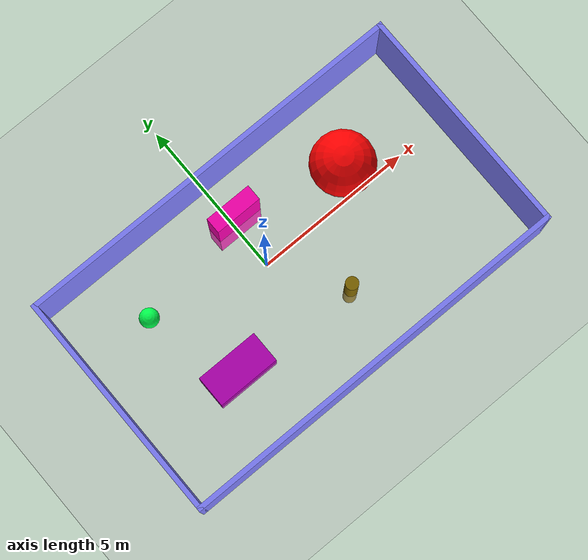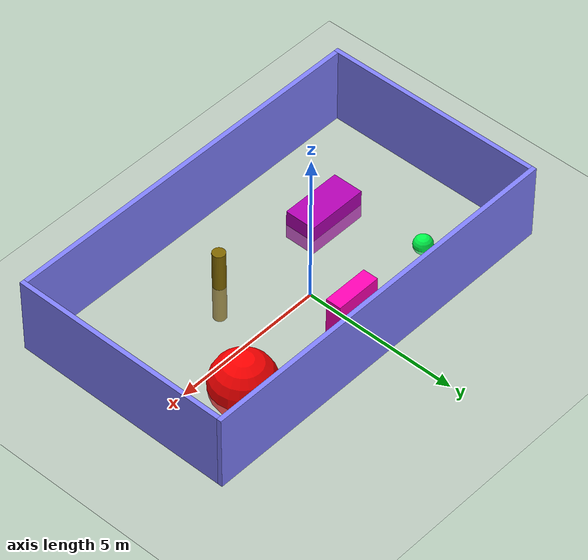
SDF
<sdf version="1.7">
 <world name="default">
  <light name="sun" type="directional">
   <pose>0 0 10 0 -0 0</pose>
   <diffuse>0.8 0.8 0.8 1</diffuse>
   <specular>0.2 0.2 0.2 1</specular>
   <attenuation>
    <range>1000</range>
    <constant>0.9</constant>
    <linear>0.01</linear>
    <quadratic>0.001</quadratic>
   </attenuation>
   <direction>-0.5 0.1 -0.9</direction>
   <spot><inner_angle>0</inner_angle><outer_angle>0</outer_angle><falloff>0</falloff></spot>
  </light>
  <model name="ground_plane">
   <static>1</static>
   <link name="link">
    <collision name="collision">
     <geometry><plane><normal>0 0 1</normal><size>100 100</size></plane></geometry>
     <surface><friction><ode><mu>100</mu><mu2>50</mu2></ode></friction></surface>
    </collision>
    <visual name="visual">
     <cast_shadows>0</cast_shadows>
     <geometry><plane><normal>0 0 1</normal><size>100 100</size></plane></geometry>
     <material>
      <script><uri>file://media/materials/scripts/gazebo.material</uri><name>Gazebo/Grey</name></script>
     </material>
    </visual>
   </link>
  </model>
  <gravity>0 0 -9.8</gravity>
  <magnetic_field>6e-06 2.3e-05 -4.2e-05</magnetic_field>
  <atmosphere type="adiabatic"/>
  <physics type="ode">
   <max_step_size>0.001</max_step_size>
   <real_time_factor>1</real_time_factor>
   <real_time_update_rate>1000</real_time_update_rate>
  </physics>
  <scene><ambient>0.4 0.4 0.4 1</ambient><background>0.7 0.7 0.7 1</background><shadows>1</shadows></scene>
  <spherical_coordinates>
   <surface_model>EARTH_WGS84</surface_model>
   <latitude_deg>0</latitude_deg>
   <longitude_deg>0</longitude_deg>
   <elevation>0</elevation>
   <heading_deg>0</heading_deg>
  </spherical_coordinates>
  <model name="map0_level0_test">
   <link name="Wall_24">
    <pose>-6.175 0 0 0 0 -1.5708</pose>
    <inertial>
     <mass>1</mass>
     <inertia><ixx>1</ixx><ixy>0</ixy><ixz>0</ixz><iyy>1</iyy><iyz>0</iyz><izz>1</izz></inertia>
    </inertial>
    <visual name="Wall_24_Visual">
     <pose>0 0 1.25 0 -0 0</pose>
     <geometry><box><size>7.25 0.15 2.5</size></box></geometry>
     <material>
      <script><uri>file://media/materials/scripts/gazebo.material</uri><name>Gazebo/Grey</name></script>
      <ambient>0.5 0.5 1 1</ambient>
      <shader type="pixel"><normal_map>__default__</normal_map></shader>
      <diffuse>0.7 0.7 0.7 1</diffuse>
      <specular>0.01 0.01 0.01 1</specular>
      <emissive>0 0 0 1</emissive>
     </material>
     <meta><layer>0</layer></meta>
    </visual>
    <collision name="Wall_24_Collision">
     <pose>0 0 1.25 0 -0 0</pose>
     <geometry><box><size>7.25 0.15 2.5</size></box></geometry>
     <surface>
      <friction>
       <ode><mu>1</mu><mu2>1</mu2><fdir1>0 0 0</fdir1><slip1>0</slip1><slip2>0</slip2></ode>
       <torsional>
        <coefficient>1</coefficient>
        <patch_radius>0</patch_radius>
        <surface_radius>0</surface_radius>
        <use_patch_radius>1</use_patch_radius>
        <ode><slip>0</slip></ode>
       </torsional>
      </friction>
      <bounce><restitution_coefficient>0</restitution_coefficient><threshold>1e+06</threshold></bounce>
      <contact>
       <collide_without_contact>0</collide_without_contact>
       <collide_without_contact_bitmask>1</collide_without_contact_bitmask>
       <collide_bitmask>1</collide_bitmask>
       <ode>
        <soft_cfm>0</soft_cfm>
        <soft_erp>0.2</soft_erp>
        <kp>1e+13</kp>
        <kd>1</kd>
        <max_vel>0.01</max_vel>
        <min_depth>0</min_depth>
       </ode>
       <bullet>
        <split_impulse>1</split_impulse>
        <split_impulse_penetration_threshold>-0.01</split_impulse_penetration_threshold>
        <soft_cfm>0</soft_cfm>
        <soft_erp>0.2</soft_erp>
        <kp>1e+13</kp>
        <kd>1</kd>
       </bullet>
      </contact>
     </surface>
    </collision>
   </link>
   <link name="Wall_25">
    <pose>0 -3.55 0 0 -0 0</pose>
    <inertial>
     <mass>1</mass>
     <inertia><ixx>1</ixx><ixy>0</ixy><ixz>0</ixz><iyy>1</iyy><iyz>0</iyz><izz>1</izz></inertia>
    </inertial>
    <visual name="Wall_25_Visual">
     <pose>0 0 1.25 0 -0 0</pose>
     <geometry><box><size>12.5 0.15 2.5</size></box></geometry>
     <material>
      <script><uri>file://media/materials/scripts/gazebo.material</uri><name>Gazebo/Grey</name></script>
      <ambient>0.5 0.5 1 1</ambient>
      <shader type="pixel"><normal_map>__default__</normal_map></shader>
      <diffuse>0.7 0.7 0.7 1</diffuse>
      <specular>0.01 0.01 0.01 1</specular>
      <emissive>0 0 0 1</emissive>
     </material>
     <meta><layer>0</layer></meta>
    </visual>
    <collision name="Wall_25_Collision">
     <pose>0 0 1.25 0 -0 0</pose>
     <geometry><box><size>12.5 0.15 2.5</size></box></geometry>
     <surface>
      <friction>
       <ode><mu>1</mu><mu2>1</mu2><fdir1>0 0 0</fdir1><slip1>0</slip1><slip2>0</slip2></ode>
       <torsional>
        <coefficient>1</coefficient>
        <patch_radius>0</patch_radius>
        <surface_radius>0</surface_radius>
        <use_patch_radius>1</use_patch_radius>
        <ode><slip>0</slip></ode>
       </torsional>
      </friction>
      <bounce><restitution_coefficient>0</restitution_coefficient><threshold>1e+06</threshold></bounce>
      <contact>
       <collide_without_contact>0</collide_without_contact>
       <collide_without_contact_bitmask>1</collide_without_contact_bitmask>
       <collide_bitmask>1</collide_bitmask>
       <ode>
        <soft_cfm>0</soft_cfm>
        <soft_erp>0.2</soft_erp>
        <kp>1e+13</kp>
        <kd>1</kd>
        <max_vel>0.01</max_vel>
        <min_depth>0</min_depth>
       </ode>
       <bullet>
        <split_impulse>1</split_impulse>
        <split_impulse_penetration_threshold>-0.01</split_impulse_penetration_threshold>
        <soft_cfm>0</soft_cfm>
        <soft_erp>0.2</soft_erp>
        <kp>1e+13</kp>
        <kd>1</kd>
       </bullet>
      </contact>
     </surface>
    </collision>
   </link>
   <link name="Wall_26">
    <pose>6.175 0 0 0 -0 1.5708</pose>
    <inertial>
     <mass>1</mass>
     <inertia><ixx>1</ixx><ixy>0</ixy><ixz>0</ixz><iyy>1</iyy><iyz>0</iyz><izz>1</izz></inertia>
    </inertial>
    <visual name="Wall_26_Visual">
     <pose>0 0 1.25 0 -0 0</pose>
     <geometry><box><size>7.25 0.15 2.5</size></box></geometry>
     <material>
      <script><uri>file://media/materials/scripts/gazebo.material</uri><name>Gazebo/Grey</name></script>
      <ambient>0.5 0.5 1 1</ambient>
      <shader type="pixel"><normal_map>__default__</normal_map></shader>
      <diffuse>0.7 0.7 0.7 1</diffuse>
      <specular>0.01 0.01 0.01 1</specular>
      <emissive>0 0 0 1</emissive>
     </material>
     <meta><layer>0</layer></meta>
    </visual>
    <collision name="Wall_26_Collision">
     <pose>0 0 1.25 0 -0 0</pose>
     <geometry><box><size>7.25 0.15 2.5</size></box></geometry>
     <surface>
      <friction>
       <ode><mu>1</mu><mu2>1</mu2><fdir1>0 0 0</fdir1><slip1>0</slip1><slip2>0</slip2></ode>
       <torsional>
        <coefficient>1</coefficient>
        <patch_radius>0</patch_radius>
        <surface_radius>0</surface_radius>
        <use_patch_radius>1</use_patch_radius>
        <ode><slip>0</slip></ode>
       </torsional>
      </friction>
      <bounce><restitution_coefficient>0</restitution_coefficient><threshold>1e+06</threshold></bounce>
      <contact>
       <collide_without_contact>0</collide_without_contact>
       <collide_without_contact_bitmask>1</collide_without_contact_bitmask>
       <collide_bitmask>1</collide_bitmask>
       <ode>
        <soft_cfm>0</soft_cfm>
        <soft_erp>0.2</soft_erp>
        <kp>1e+13</kp>
        <kd>1</kd>
        <max_vel>0.01</max_vel>
        <min_depth>0</min_depth>
       </ode>
       <bullet>
        <split_impulse>1</split_impulse>
        <split_impulse_penetration_threshold>-0.01</split_impulse_penetration_threshold>
        <soft_cfm>0</soft_cfm>
        <soft_erp>0.2</soft_erp>
        <kp>1e+13</kp>
        <kd>1</kd>
       </bullet>
      </contact>
     </surface>
    </collision>
   </link>
   <link name="Wall_28">
    <pose>0 3.55 0 0 -0 0</pose>
    <inertial>
     <mass>1</mass>
     <inertia><ixx>1</ixx><ixy>0</ixy><ixz>0</ixz><iyy>1</iyy><iyz>0</iyz><izz>1</izz></inertia>
    </inertial>
    <visual name="Wall_28_Visual">
     <pose>0 0 1.25 0 -0 0</pose>
     <geometry><box><size>12.5 0.15 2.5</size></box></geometry>
     <material>
      <script><uri>file://media/materials/scripts/gazebo.material</uri><name>Gazebo/Grey</name></script>
      <ambient>0.5 0.5 1 1</ambient>
      <shader type="pixel"><normal_map>__default__</normal_map></shader>
      <diffuse>0.7 0.7 0.7 1</diffuse>
      <specular>0.01 0.01 0.01 1</specular>
      <emissive>0 0 0 1</emissive>
     </material>
     <meta><layer>0</layer></meta>
    </visual>
    <collision name="Wall_28_Collision">
     <pose>0 0 1.25 0 -0 0</pose>
     <geometry><box><size>12.5 0.15 2.5</size></box></geometry>
     <surface>
      <friction>
       <ode><mu>1</mu><mu2>1</mu2><fdir1>0 0 0</fdir1><slip1>0</slip1><slip2>0</slip2></ode>
       <torsional>
        <coefficient>1</coefficient>
        <patch_radius>0</patch_radius>
        <surface_radius>0</surface_radius>
        <use_patch_radius>1</use_patch_radius>
        <ode><slip>0</slip></ode>
       </torsional>
      </friction>
      <bounce><restitution_coefficient>0</restitution_coefficient><threshold>1e+06</threshold></bounce>
      <contact>
       <collide_without_contact>0</collide_without_contact>
       <collide_without_contact_bitmask>1</collide_without_contact_bitmask>
       <collide_bitmask>1</collide_bitmask>
       <ode>
        <soft_cfm>0</soft_cfm>
        <soft_erp>0.2</soft_erp>
        <kp>1e+13</kp>
        <kd>1</kd>
        <max_vel>0.01</max_vel>
        <min_depth>0</min_depth>
       </ode>
       <bullet>
        <split_impulse>1</split_impulse>
        <split_impulse_penetration_threshold>-0.01</split_impulse_penetration_threshold>
        <soft_cfm>0</soft_cfm>
        <soft_erp>0.2</soft_erp>
        <kp>1e+13</kp>
        <kd>1</kd>
       </bullet>
      </contact>
     </surface>
    </collision>
   </link>
   <static>1</static>
   <pose>0.3689 -0.692383 0 0 -0 0</pose>
  </model>
  <model name="green_ball">
   <link name="link">
    <inertial>
     <mass>1</mass>
     <inertia><ixx>0.1</ixx><ixy>0</ixy><ixz>0</ixz><iyy>0.1</iyy><iyz>0</iyz><izz>0.1</izz></inertia>
    </inertial>
    <visual name="visual">
     <geometry><sphere><radius>0.3</radius></sphere></geometry>
     <material>
      <script><name>Gazebo/Grey</name><uri>file://media/materials/scripts/gazebo.material</uri></script>
      <shader type="pixel"><normal_map>__default__</normal_map></shader>
      <ambient>0 1 0.3 1</ambient>
      <diffuse>0.7 0.7 0.7 1</diffuse>
      <specular>0.01 0.01 0.01 1</specular>
      <emissive>0 0 0 1</emissive>
     </material>
    </visual>
    <collision name="collision">
     <geometry><sphere><radius>0.3</radius></sphere></geometry>
     <surface>
      <friction>
       <ode><mu>1</mu><mu2>1</mu2><fdir1>0 0 0</fdir1><slip1>0</slip1><slip2>0</slip2></ode>
       <torsional>
        <coefficient>1</coefficient>
        <patch_radius>0</patch_radius>
        <surface_radius>0</surface_radius>
        <use_patch_radius>1</use_patch_radius>
        <ode><slip>0</slip></ode>
       </torsional>
      </friction>
      <bounce><restitution_coefficient>0</restitution_coefficient><threshold>1e+06</threshold></bounce>
      <contact>
       <collide_without_contact>0</collide_without_contact>
       <collide_without_contact_bitmask>1</collide_without_contact_bitmask>
       <collide_bitmask>1</collide_bitmask>
       <ode>
        <soft_cfm>0</soft_cfm>
        <soft_erp>0.2</soft_erp>
        <kp>1e+13</kp>
        <kd>1</kd>
        <max_vel>0.01</max_vel>
        <min_depth>0</min_depth>
       </ode>
       <bullet>
        <split_impulse>1</split_impulse>
        <split_impulse_penetration_threshold>-0.01</split_impulse_penetration_threshold>
        <soft_cfm>0</soft_cfm>
        <soft_erp>0.2</soft_erp>
        <kp>1e+13</kp>
        <kd>1</kd>
       </bullet>
      </contact>
     </surface>
    </collision>
   </link>
   <static>0</static>
   <pose>-3.54369 0.98409 0 0 -0 0</pose>
  </model>
  <model name="red_ball">
   <link name="link">
    <inertial>
     <mass>1</mass>
     <inertia><ixx>0.1</ixx><ixy>0</ixy><ixz>0</ixz><iyy>0.1</iyy><iyz>0</iyz><izz>0.1</izz></inertia>
    </inertial>
    <visual name="visual">
     <geometry><sphere><radius>1</radius></sphere></geometry>
     <material>
      <script><name>Gazebo/Grey</name><uri>file://media/materials/scripts/gazebo.material</uri></script>
      <shader type="pixel"><normal_map>__default__</normal_map></shader>
      <ambient>1 0 0 1</ambient>
      <diffuse>0.7 0.7 0.7 1</diffuse>
      <specular>0.01 0.01 0.01 1</specular>
      <emissive>0 0 0 1</emissive>
     </material>
    </visual>
    <collision name="collision">
     <geometry><sphere><radius>1</radius></sphere></geometry>
     <surface>
      <friction>
       <ode><mu>1</mu><mu2>1</mu2><fdir1>0 0 0</fdir1><slip1>0</slip1><slip2>0</slip2></ode>
       <torsional>
        <coefficient>1</coefficient>
        <patch_radius>0</patch_radius>
        <surface_radius>0</surface_radius>
        <use_patch_radius>1</use_patch_radius>
        <ode><slip>0</slip></ode>
       </torsional>
      </friction>
      <bounce><restitution_coefficient>0</restitution_coefficient><threshold>1e+06</threshold></bounce>
      <contact>
       <collide_without_contact>0</collide_without_contact>
       <collide_without_contact_bitmask>1</collide_without_contact_bitmask>
       <collide_bitmask>1</collide_bitmask>
       <ode>
        <soft_cfm>0</soft_cfm>
        <soft_erp>0.2</soft_erp>
        <kp>1e+13</kp>
        <kd>1</kd>
        <max_vel>0.01</max_vel>
        <min_depth>0</min_depth>
       </ode>
       <bullet>
        <split_impulse>1</split_impulse>
        <split_impulse_penetration_threshold>-0.01</split_impulse_penetration_threshold>
        <soft_cfm>0</soft_cfm>
        <soft_erp>0.2</soft_erp>
        <kp>1e+13</kp>
        <kd>1</kd>
       </bullet>
      </contact>
     </surface>
    </collision>
   </link>
   <static>0</static>
   <pose>3.61343 0.887755 0 0 -0 0</pose>
  </model>
  <model name="orange_primastic">
   <link name="link">
    <inertial>
     <mass>1</mass>
     <inertia><ixx>0.145833</ixx><ixy>0</ixy><ixz>0</ixz><iyy>0.145833</iyy><iyz>0</iyz><izz>0.125</izz></inertia>
    </inertial>
    <visual name="visual">
     <geometry><cylinder><radius>0.2</radius><length>2.5</length></cylinder></geometry>
     <material>
      <script><name>Gazebo/Grey</name><uri>file://media/materials/scripts/gazebo.material</uri></script>
      <shader type="pixel"><normal_map>__default__</normal_map></shader>
      <ambient>0.5 0.4 0 1</ambient>
      <diffuse>0.7 0.7 0.7 1</diffuse>
      <specular>0.01 0.01 0.01 1</specular>
      <emissive>0 0 0 1</emissive>
     </material>
    </visual>
    <collision name="collision">
     <geometry><cylinder><radius>0.2</radius><length>2.5</length></cylinder></geometry>
     <surface>
      <friction>
       <ode><mu>1</mu><mu2>1</mu2><fdir1>0 0 0</fdir1><slip1>0</slip1><slip2>0</slip2></ode>
       <torsional>
        <coefficient>1</coefficient>
        <patch_radius>0</patch_radius>
        <surface_radius>0</surface_radius>
        <use_patch_radius>1</use_patch_radius>
        <ode><slip>0</slip></ode>
       </torsional>
      </friction>
      <bounce><restitution_coefficient>0</restitution_coefficient><threshold>1e+06</threshold></bounce>
      <contact>
       <collide_without_contact>0</collide_without_contact>
       <collide_without_contact_bitmask>1</collide_without_contact_bitmask>
       <collide_bitmask>1</collide_bitmask>
       <ode>
        <soft_cfm>0</soft_cfm>
        <soft_erp>0.2</soft_erp>
        <kp>1e+13</kp>
        <kd>1</kd>
        <max_vel>0.01</max_vel>
        <min_depth>0</min_depth>
       </ode>
       <bullet>
        <split_impulse>1</split_impulse>
        <split_impulse_penetration_threshold>-0.01</split_impulse_penetration_threshold>
        <soft_cfm>0</soft_cfm>
        <soft_erp>0.2</soft_erp>
        <kp>1e+13</kp>
        <kd>1</kd>
       </bullet>
      </contact>
     </surface>
    </collision>
   </link>
   <static>0</static>
   <pose>1.3936 -2.08696 0 0 -0 0</pose>
  </model>
  <model name="purple_box">
   <link name="link">
    <inertial>
     <mass>1</mass>
     <inertia>
      <ixx>0.166667</ixx>
      <ixy>0</ixy>
      <ixz>0</ixz>
      <iyy>0.166667</iyy>
      <iyz>0</iyz>
      <izz>0.166667</izz>
     </inertia>
    </inertial>
    <visual name="visual">
     <geometry><box><size>2 1 1</size></box></geometry>
     <material>
      <script><name>Gazebo/Grey</name><uri>file://media/materials/scripts/gazebo.material</uri></script>
      <shader type="pixel"><normal_map>__default__</normal_map></shader>
      <ambient>0 1 1 1</ambient>
      <diffuse>0.7 0 0.7 1</diffuse>
      <specular>0.01 0.01 0.01 1</specular>
      <emissive>0 0 0 1</emissive>
     </material>
     <pose>0 -0.5 0 0 -0 0</pose>
    </visual>
    <collision name="collision">
     <pose>0 -0.5 0 0 -0 0</pose>
     <geometry><box><size>2 1 1</size></box></geometry>
     <surface>
      <friction>
       <ode><mu>1</mu><mu2>1</mu2><fdir1>0 0 0</fdir1><slip1>0</slip1><slip2>0</slip2></ode>
       <torsional>
        <coefficient>1</coefficient>
        <patch_radius>0</patch_radius>
        <surface_radius>0</surface_radius>
        <use_patch_radius>1</use_patch_radius>
        <ode><slip>0</slip></ode>
       </torsional>
      </friction>
      <bounce><restitution_coefficient>0</restitution_coefficient><threshold>1e+06</threshold></bounce>
      <contact>
       <collide_without_contact>0</collide_without_contact>
       <collide_without_contact_bitmask>1</collide_without_contact_bitmask>
       <collide_bitmask>1</collide_bitmask>
       <ode>
        <soft_cfm>0</soft_cfm>
        <soft_erp>0.2</soft_erp>
        <kp>1e+13</kp>
        <kd>1</kd>
        <max_vel>0.01</max_vel>
        <min_depth>0</min_depth>
       </ode>
       <bullet>
        <split_impulse>1</split_impulse>
        <split_impulse_penetration_threshold>-0.01</split_impulse_penetration_threshold>
        <soft_cfm>0</soft_cfm>
        <soft_erp>0.2</soft_erp>
        <kp>1e+13</kp>
        <kd>1</kd>
       </bullet>
      </contact>
     </surface>
    </collision>
   </link>
   <static>0</static>
   <pose>-2.56411 -1.31904 0 0 -0 0</pose>
  </model>
  <model name="pink_box">
   <link name="link">
    <inertial>
     <mass>1</mass>
     <inertia>
      <ixx>0.166667</ixx>
      <ixy>0</ixy>
      <ixz>0</ixz>
      <iyy>0.166667</iyy>
      <iyz>0</iyz>
      <izz>0.166667</izz>
     </inertia>
    </inertial>
    <visual name="visual">
     <geometry><box><size>1.5 0.5 3</size></box></geometry>
     <material>
      <script><name>Gazebo/Grey</name><uri>file://media/materials/scripts/gazebo.material</uri></script>
      <shader type="pixel"><normal_map>__default__</normal_map></shader>
      <ambient>1 0.1 0.8 0.7</ambient>
      <diffuse>1 0 0.7 1</diffuse>
      <specular>0.01 0.11 0.01 1</specular>
      <emissive>0 0 0 1</emissive>
     </material>
    </visual>
    <collision name="collision">
     <geometry><box><size>1.5 0.5 3</size></box></geometry>
     <surface>
      <friction>
       <ode><mu>1</mu><mu2>1</mu2><fdir1>0 0 0</fdir1><slip1>0</slip1><slip2>0</slip2></ode>
       <torsional>
        <coefficient>1</coefficient>
        <patch_radius>0</patch_radius>
        <surface_radius>0</surface_radius>
        <use_patch_radius>1</use_patch_radius>
        <ode><slip>0</slip></ode>
       </torsional>
      </friction>
      <bounce><restitution_coefficient>0</restitution_coefficient><threshold>1e+06</threshold></bounce>
      <contact>
       <collide_without_contact>0</collide_without_contact>
       <collide_without_contact_bitmask>1</collide_without_contact_bitmask>
       <collide_bitmask>1</collide_bitmask>
       <ode>
        <soft_cfm>0</soft_cfm>
        <soft_erp>0.2</soft_erp>
        <kp>1e+13</kp>
        <kd>1</kd>
        <max_vel>0.01</max_vel>
        <min_depth>0</min_depth>
       </ode>
       <bullet>
        <split_impulse>1</split_impulse>
        <split_impulse_penetration_threshold>-0.01</split_impulse_penetration_threshold>
        <soft_cfm>0</soft_cfm>
        <soft_erp>0.2</soft_erp>
        <kp>1e+13</kp>
        <kd>1</kd>
       </bullet>
      </contact>
     </surface>
    </collision>
   </link>
   <static>0</static>
   <pose>0.164101 1.63009 0 0 -0 0</pose>
  </model>
 </world>
</sdf>
